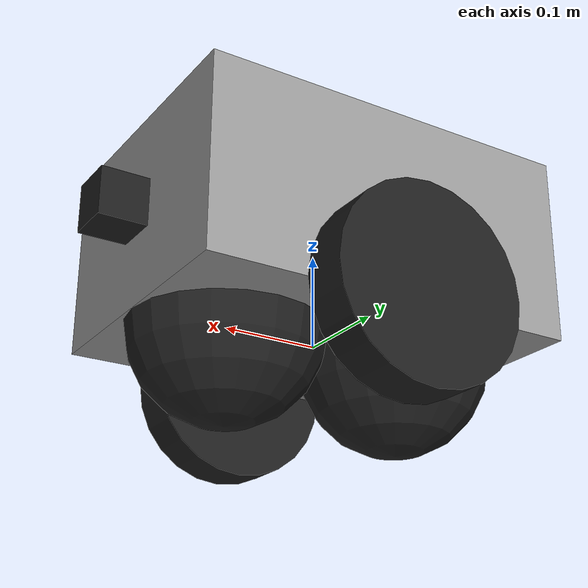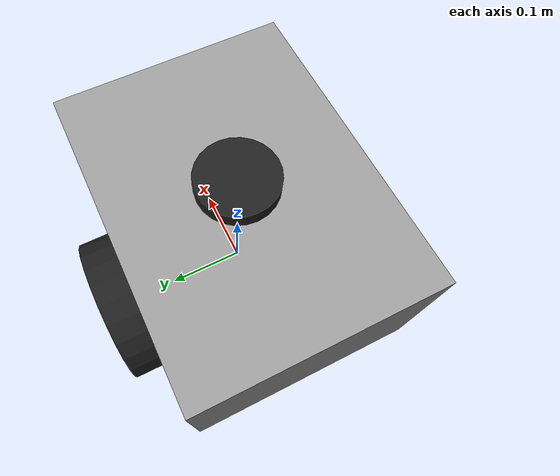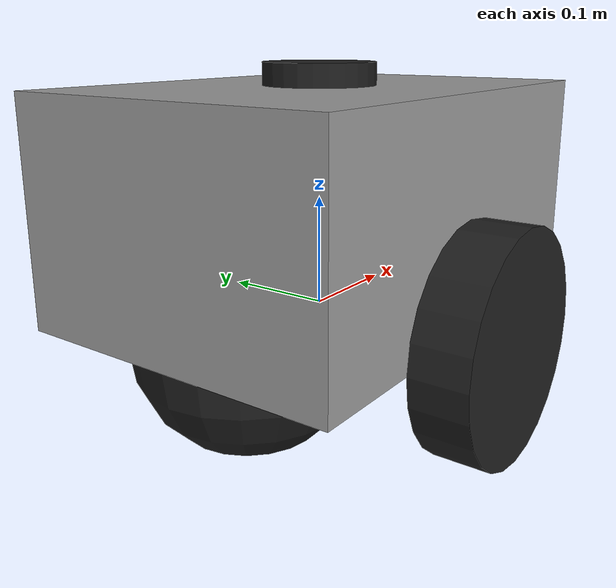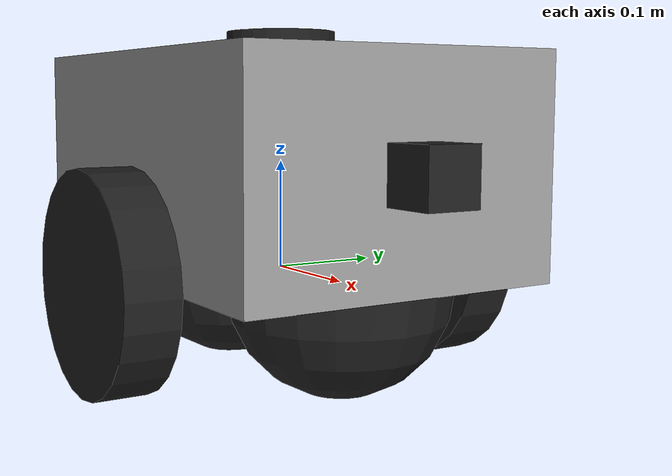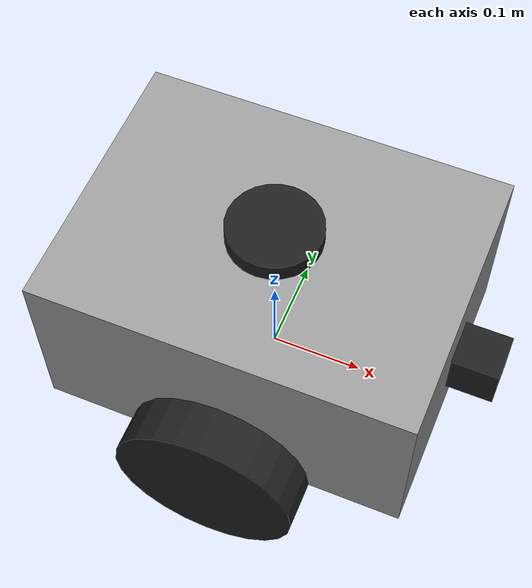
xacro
<?xml version="1.0"?>
<robot name="differential_robot" xmlns:xacro="http://ros.org/wiki/xacro">

    <!-- Incluir o arquivo das rodas -->
    <xacro:include filename="$(find robot_description)/urdf/wheels.xacro"/>

    <!-- Inclua o arquivo caster.xacro -->
    <xacro:include filename="$(find robot_description)/urdf/caster.xacro"/>

    <!-- Inclua o arquivo sensors.xacro -->
    <xacro:include filename="$(find robot_description)/urdf/sensors.xacro"/>

    <!-- Inclua o arquivo robot_base.xacro -->
    <xacro:include filename="$(find robot_description)/urdf/robot_base.xacro"/>

</robot>

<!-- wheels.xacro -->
<robot xmlns:xacro="http://ros.org/wiki/xacro">

    <!-- Definição das variáveis reutilizáveis -->
    <xacro:property name="pi" value="3.141592653589793"/>
    <xacro:property name="wheel_radius" value="0.1"/>
    <xacro:property name="wheel_length" value="0.05"/>

    <!-- Macro para definir uma roda -->
    <xacro:macro name="wheel" params="name x y z joint_name">
        <link name="${name}">
            <visual>
                <geometry>
                    <cylinder radius="${wheel_radius}" length="${wheel_length}"/> <!-- Aumento do tamanho da roda -->
                </geometry>
                <material name="black"/>
            </visual>
            <collision>
                <geometry>
                    <cylinder radius="${wheel_radius}" length="${wheel_length}"/> <!-- Aumento do tamanho da roda -->
                </geometry>
            </collision>
            <inertial>
                <mass value="0.5"/> <!-- Ajuste no valor de massa para refletir o tamanho maior -->
                <inertia ixx="${(1/12) * 0.5 * (3*wheel_radius*wheel_radius + wheel_length*wheel_length)}" ixy="0.0" ixz="0.0"
                    iyy="${(1/12) * 0.5 * (3*wheel_radius*wheel_radius + wheel_length*wheel_length)}" iyz="0.0"
                    izz="${(1/2) * 0.5 * (wheel_radius*wheel_radius)}"/>
            </inertial>
        </link>

        <!-- Defina um joint único passando o nome do joint -->
        <joint name="${joint_name}" type="continuous">
            <parent link="base_link"/>
            <child link="${name}"/>
            <origin xyz="${x} ${y} ${z}" rpy="${-pi/2} 0 0"/>  <!-- RPY = 0,0,0 para alinhamento correto -->
            <axis xyz="0 0 1"/> <!-- Eixo de rotação ao longo do eixo z -->
        </joint>
    </xacro:macro>

</robot>

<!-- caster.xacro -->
<robot xmlns:xacro="http://ros.org/wiki/xacro">

    <!-- Macro para definir a caster ball -->
    <xacro:macro name="caster_ball" params="name x y z">
        <link name="${name}">
            <visual>
                <geometry>
                    <sphere radius="0.1"/> <!-- Ajuste o raio conforme necessário -->
                </geometry>
                <material name="black"/>
            </visual>
            <collision>
                <geometry>
                    <sphere radius="0.1"/> <!-- Ajuste o raio conforme necessário -->
                </geometry>
            </collision>
            <inertial>
                <mass value="0.1"/> <!-- Ajuste a massa conforme necessário -->
                <inertia ixx="0.001" ixy="0.0" ixz="0.0" iyy="0.001" iyz="0.0" izz="0.001"/>
            </inertial>
        </link>

        <!-- Joint para conectar a caster ball ao base_link -->
        <joint name="${name}_joint" type="fixed">
            <parent link="chassis"/>
            <child link="${name}"/>
            <origin xyz="${x} ${y} ${z}" rpy="0 0 0"/>
        </joint>

        <!-- Configuração do atrito para simulação no Gazebo -->
        <gazebo reference="${name}">
            <material>gazebo/black</material>
            <mu1 value="0.001"/>
            <mu2 value="0.001"/>
        </gazebo>
    </xacro:macro>

</robot>

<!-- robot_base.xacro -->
<robot xmlns:xacro="http://ros.org/wiki/xacro">

    <!-- Inclusão dos arquivos necessários -->
    <xacro:include filename="$(find robot_description)/urdf/wheels.xacro"/>
    <xacro:include filename="$(find robot_description)/urdf/caster.xacro"/>
    <xacro:include filename="$(find robot_description)/urdf/sensors.xacro"/>

    <xacro:property name="mass" value="5.0"/>

    <!-- Frame base_link: Ponto central do robô -->
    <link name="base_link"/>

    <!-- Chassis do robô -->
    <link name="chassis">
        <visual>
            <geometry>
                <box size="0.4 0.3 0.2"/>
            </geometry>
            <material name="gray"/>
        </visual>
        <inertial>
            <mass value="${mass}"/>
            <inertia ixx="${(1/12) * mass * (0.3*0.3+0.2*0.2)}" ixy="0.0" ixz="0.0"
                    iyy="${(1/12) * mass * (0.4*0.4+0.2*0.2)}" iyz="0.0"
                    izz="${(1/12) * mass * (0.4*0.4+0.3*0.3)}" />
        </inertial>
        <collision>
            <geometry>
                <box size="0.4 0.3 0.2"/>
            </geometry>
        </collision>
    </link>

    <!-- Junta fixa entre base_link e chassis -->
    <joint name="base_to_chassis" type="fixed">
        <parent link="base_link"/>
        <child link="chassis"/>
        <origin xyz="0 0 0.1" rpy="0 0 0"/>
    </joint>

    <!-- Chamada das rodas, agora posicionadas como se fossem rodas laterais -->
    <xacro:wheel name="left_wheel" x="0" y="0.175" z="0" joint_name="left_wheel_joint"/>
    <xacro:wheel name="right_wheel" x="0" y="-0.175" z="0" joint_name="right_wheel_joint"/>

    <!-- Caster ball para equilíbrio -->
    <xacro:caster_ball name="caster_ball" x="0.1" y="0.0" z="-0.1"/>

    <!-- Caster ball2 para equilíbrio -->
    <xacro:caster_ball name="caster_ball2" x="-0.1" y="0.0" z="-0.1"/>

    <!-- Link do IMU -->
    <link name="imu_link"/>

    <!-- Junta fixa entre chassis e IMU -->
    <joint name="imu_joint" type="fixed">
        <parent link="chassis"/>
        <child link="imu_link"/>
        <origin xyz="0 0 0" rpy="0 0 0"/>
    </joint>

    <!-- Lidar no topo do robô -->
    <link name="lidar_link">
        <visual>
            <geometry>
                <cylinder radius="0.05" length="0.02"/>
            </geometry>
            <material name="black"/>
        </visual>
        <collision>
            <geometry>
                <cylinder radius="0.05" length="0.02"/>
            </geometry>
        </collision>
    </link>

    <!-- Junta fixa entre chassis e LIDAR -->
    <joint name="lidar_joint" type="fixed">
        <parent link="chassis"/>
        <child link="lidar_link"/>
        <origin xyz="0 0 0.11" rpy="0 0 0"/>
    </joint>

    <!-- Câmera na frente do robô -->
    <link name="camera_link">
        <visual>
            <geometry>
                <box size="0.1 0.05 0.05"/>
            </geometry>
            <material name="black"/>
        </visual>
        <collision>
            <geometry>
                <box size="0.1 0.05 0.05"/>
            </geometry>
        </collision>
    </link>

    <!-- Junta fixa entre chassis e câmera -->
    <joint name="camera_joint" type="fixed">
        <parent link="chassis"/>
        <child link="camera_link"/>
        <origin xyz="0.2 0 0" rpy="0 0 0"/>
    </joint>

</robot>
